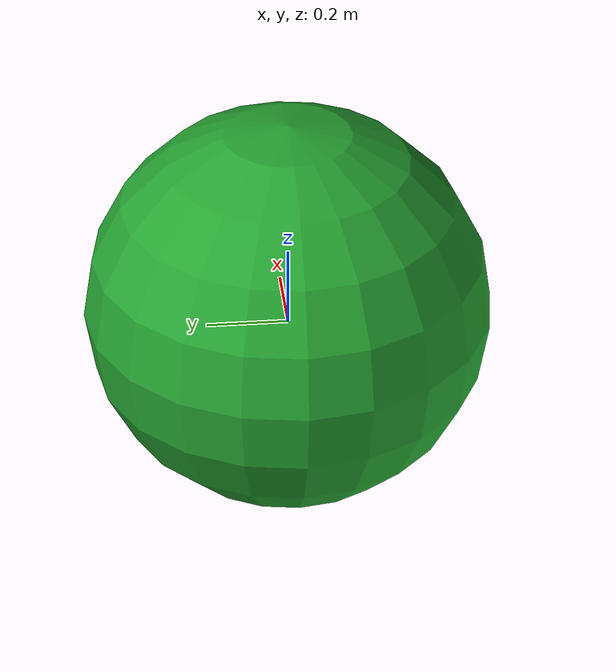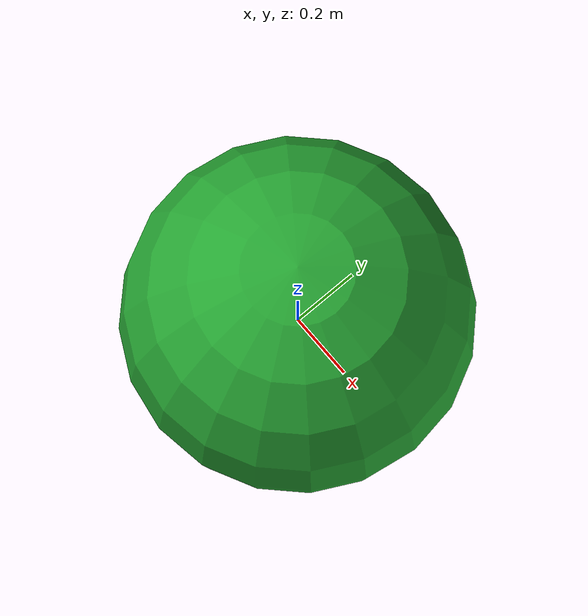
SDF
<?xml version="1.0" ?>
<sdf version="1.5">
  <model name="green_ball">
    <link name="link">
      <pose>0 0 0.05 0 0 0</pose>
      <self_collide>0</self_collide>
      <kinematic>0</kinematic>
      <gravity>0</gravity>

      <collision name="collision">
        <geometry>
          <sphere>
            <radius>0.5</radius>
          </sphere>
        </geometry>
        <surface>
          <contact>
            <collide_without_contact>1</collide_without_contact>
          </contact>
        </surface>
      </collision>

      <visual name="visual">
        <geometry>
          <sphere>
            <radius>0.5</radius>
          </sphere>
        </geometry>
        <material>
          <script>
            <uri>file://media/materials/scripts/gazebo.material</uri>
            <name>Gazebo/Green</name>
          </script>
        </material>
      </visual>

    </link>
  </model>
</sdf>
